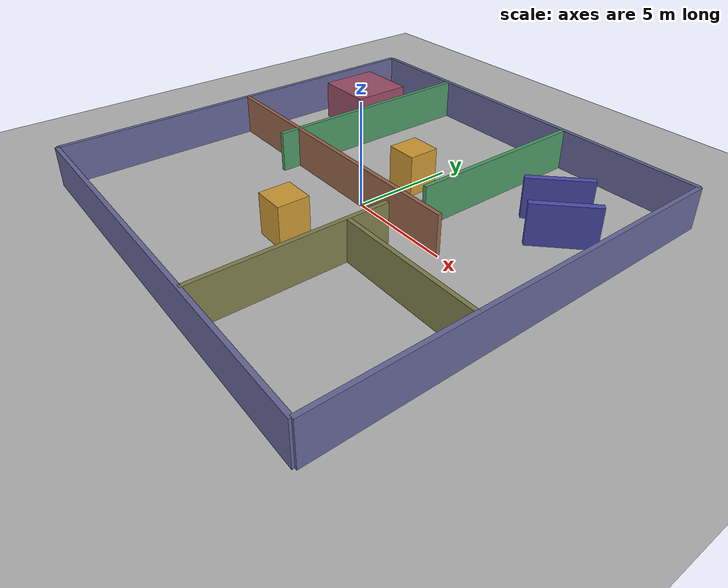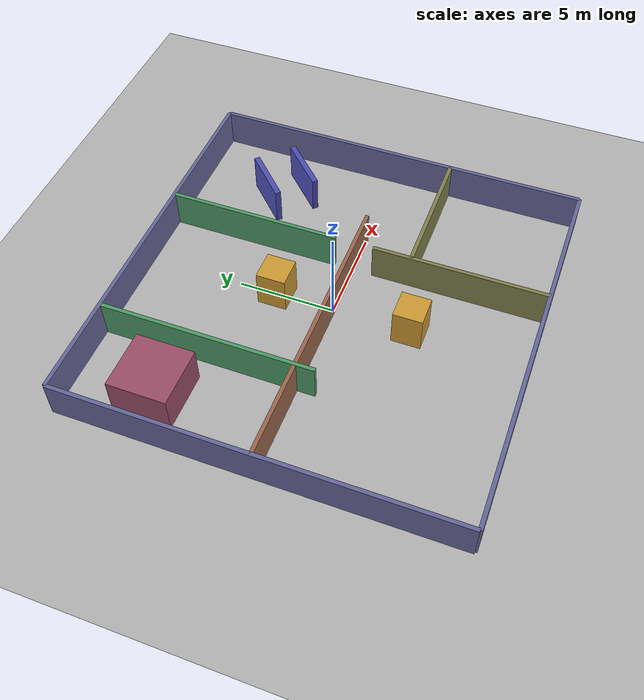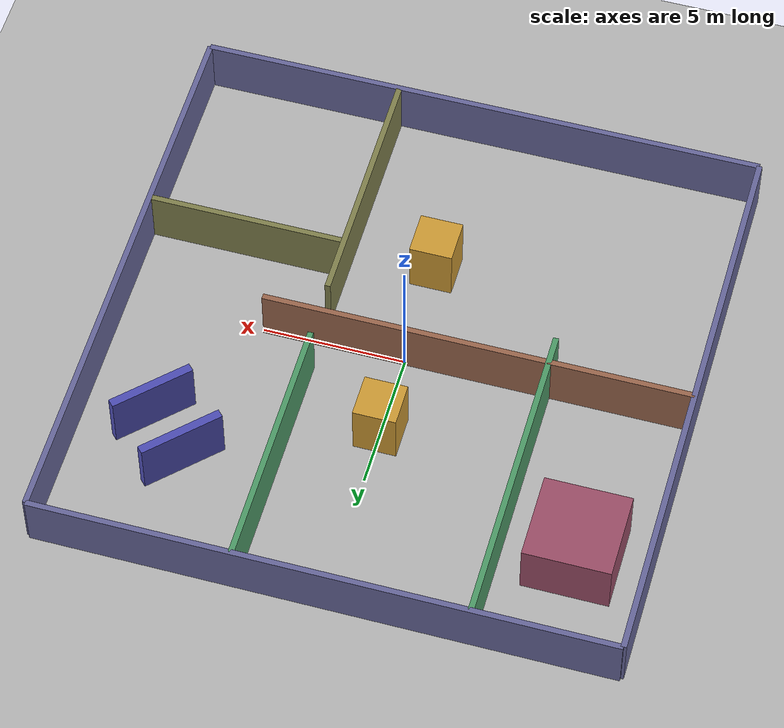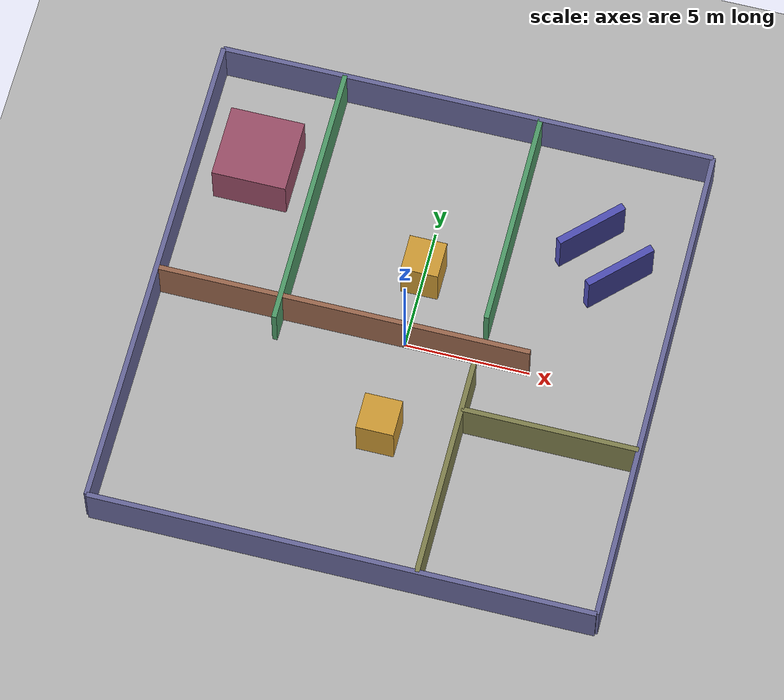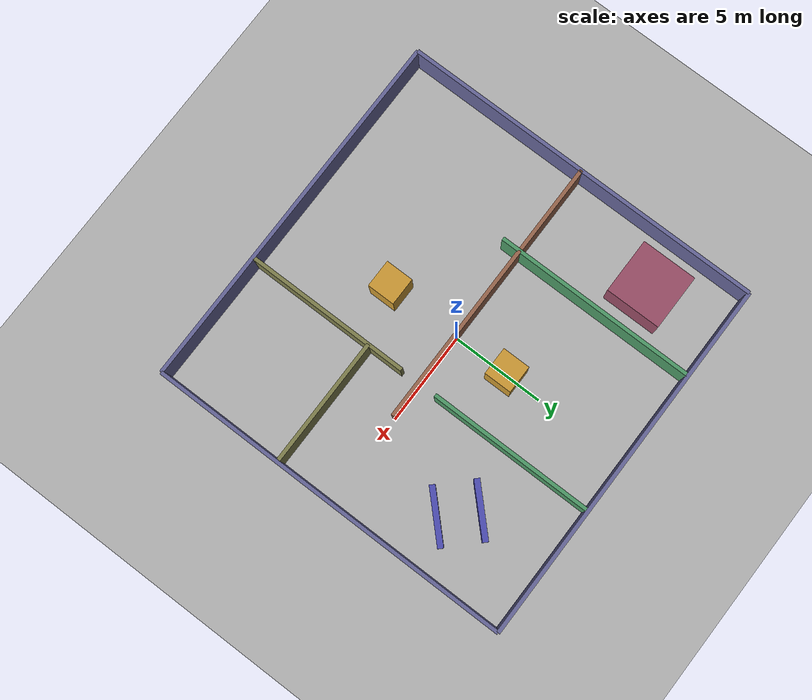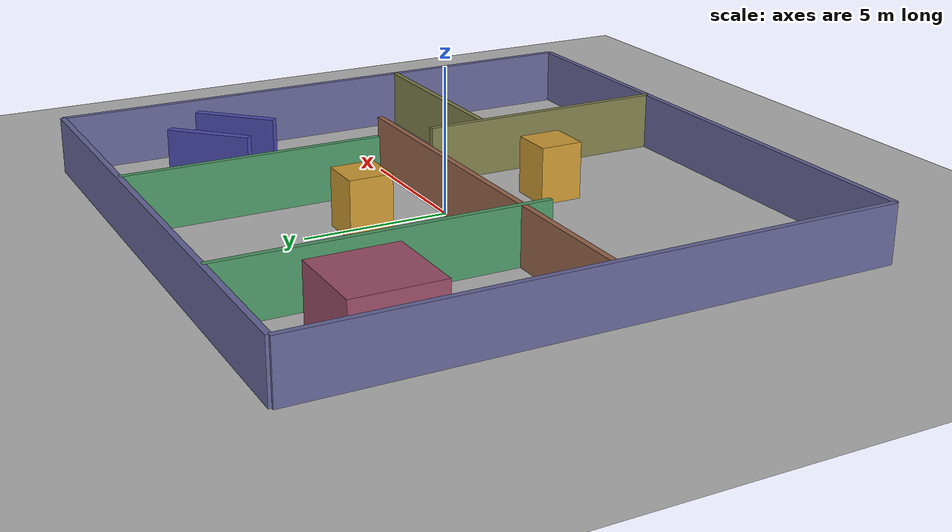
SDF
<?xml version="1.0" ?>
<sdf version='1.8'>
  <world name='maze'>

    <physics name='1ms' type='ignored'>
      <max_step_size>0.001</max_step_size>
      <real_time_factor>1</real_time_factor>
    </physics>

    <plugin filename="ignition-gazebo-physics-system"
            name="ignition::gazebo::systems::Physics">
      <max_step_size>0.001</max_step_size>
      <real_time_factor>1.0</real_time_factor>
      <real_time_update_rate>1000</real_time_update_rate>
    </plugin>
    <plugin filename="ignition-gazebo-user-commands-system"
            name="ignition::gazebo::systems::UserCommands"/>
    <plugin filename="ignition-gazebo-scene-broadcaster-system"
            name="ignition::gazebo::systems::SceneBroadcaster"/>
    <plugin filename="ignition-gazebo-sensors-system"
            name="ignition::gazebo::systems::Sensors">
      <render_engine>ogre2</render_engine>
    </plugin>
    <plugin filename="ignition-gazebo-contact-system"
            name="ignition::gazebo::systems::Contact"/>

    <light name='sun' type='directional'>
      <pose>0 0 10 0 0 0</pose>
      <cast_shadows>true</cast_shadows>
      <intensity>1</intensity>
      <direction>-0.5 0.1 -0.9</direction>
      <diffuse>0.8 0.8 0.8 1</diffuse>
      <specular>0.2 0.2 0.2 1</specular>
    </light>

    <!-- Ground plane -->
    <model name='ground_plane'>
      <static>true</static>
      <link name='link'>
        <collision name='collision'>
          <geometry><plane><normal>0 0 1</normal><size>100 100</size></plane></geometry>
        </collision>
        <visual name='visual'>
          <geometry><plane><normal>0 0 1</normal><size>100 100</size></plane></geometry>
          <material>
            <ambient>0.7 0.7 0.7 1</ambient>
            <diffuse>0.7 0.7 0.7 1</diffuse>
          </material>
        </visual>
      </link>
    </model>

    <!-- ===== OUTER BOUNDARY WALLS (20x20m arena) ===== -->
    <!-- North wall -->
    <model name='wall_north'><static>true</static><link name='link'>
      <pose>0 10 1 0 0 0</pose>
      <collision name='c'><geometry><box><size>20 0.2 2</size></box></geometry></collision>
      <visual name='v'><geometry><box><size>20 0.2 2</size></box></geometry>
        <material><ambient>0.4 0.4 0.6 1</ambient><diffuse>0.4 0.4 0.6 1</diffuse></material></visual>
    </link></model>

    <!-- South wall -->
    <model name='wall_south'><static>true</static><link name='link'>
      <pose>0 -10 1 0 0 0</pose>
      <collision name='c'><geometry><box><size>20 0.2 2</size></box></geometry></collision>
      <visual name='v'><geometry><box><size>20 0.2 2</size></box></geometry>
        <material><ambient>0.4 0.4 0.6 1</ambient><diffuse>0.4 0.4 0.6 1</diffuse></material></visual>
    </link></model>

    <!-- East wall -->
    <model name='wall_east'><static>true</static><link name='link'>
      <pose>10 0 1 0 0 0</pose>
      <collision name='c'><geometry><box><size>0.2 20 2</size></box></geometry></collision>
      <visual name='v'><geometry><box><size>0.2 20 2</size></box></geometry>
        <material><ambient>0.4 0.4 0.6 1</ambient><diffuse>0.4 0.4 0.6 1</diffuse></material></visual>
    </link></model>

    <!-- West wall -->
    <model name='wall_west'><static>true</static><link name='link'>
      <pose>-10 0 1 0 0 0</pose>
      <collision name='c'><geometry><box><size>0.2 20 2</size></box></geometry></collision>
      <visual name='v'><geometry><box><size>0.2 20 2</size></box></geometry>
        <material><ambient>0.4 0.4 0.6 1</ambient><diffuse>0.4 0.4 0.6 1</diffuse></material></visual>
    </link></model>

    <!-- ===== INTERIOR WALLS — ROOM DIVIDERS ===== -->

    <!-- Horizontal divider: splits arena into top/bottom halves, gap on right -->
    <model name='h_div_left'><static>true</static><link name='link'>
      <pose>-2.5 0 1 0 0 0</pose>
      <collision name='c'><geometry><box><size>15 0.2 2</size></box></geometry></collision>
      <visual name='v'><geometry><box><size>15 0.2 2</size></box></geometry>
        <material><ambient>0.6 0.4 0.3 1</ambient><diffuse>0.6 0.4 0.3 1</diffuse></material></visual>
    </link></model>

    <!-- Vertical divider: left side corridor, gap at bottom -->
    <model name='v_div_left'><static>true</static><link name='link'>
      <pose>-5 4.5 1 0 0 0</pose>
      <collision name='c'><geometry><box><size>0.2 11 2</size></box></geometry></collision>
      <visual name='v'><geometry><box><size>0.2 11 2</size></box></geometry>
        <material><ambient>0.3 0.6 0.4 1</ambient><diffuse>0.3 0.6 0.4 1</diffuse></material></visual>
    </link></model>

    <!-- Vertical divider: right side, top half only -->
    <model name='v_div_right_top'><static>true</static><link name='link'>
      <pose>3 5.5 1 0 0 0</pose>
      <collision name='c'><geometry><box><size>0.2 9 2</size></box></geometry></collision>
      <visual name='v'><geometry><box><size>0.2 9 2</size></box></geometry>
        <material><ambient>0.3 0.6 0.4 1</ambient><diffuse>0.3 0.6 0.4 1</diffuse></material></visual>
    </link></model>

    <!-- Bottom-right room: vertical wall -->
    <model name='br_wall_v'><static>true</static><link name='link'>
      <pose>3 -5.5 1 0 0 0</pose>
      <collision name='c'><geometry><box><size>0.2 9 2</size></box></geometry></collision>
      <visual name='v'><geometry><box><size>0.2 9 2</size></box></geometry>
        <material><ambient>0.5 0.5 0.3 1</ambient><diffuse>0.5 0.5 0.3 1</diffuse></material></visual>
    </link></model>

    <!-- Bottom-right room: horizontal wall, gap on left -->
    <model name='br_wall_h'><static>true</static><link name='link'>
      <pose>6.5 -3 1 0 0 0</pose>
      <collision name='c'><geometry><box><size>7 0.2 2</size></box></geometry></collision>
      <visual name='v'><geometry><box><size>7 0.2 2</size></box></geometry>
        <material><ambient>0.5 0.5 0.3 1</ambient><diffuse>0.5 0.5 0.3 1</diffuse></material></visual>
    </link></model>

    <!-- Narrow corridor: top-left box -->
    <model name='tl_box'><static>true</static><link name='link'>
      <pose>-7.5 6 1 0 0 0</pose>
      <collision name='c'><geometry><box><size>3 3 2</size></box></geometry></collision>
      <visual name='v'><geometry><box><size>3 3 2</size></box></geometry>
        <material><ambient>0.6 0.3 0.4 1</ambient><diffuse>0.6 0.3 0.4 1</diffuse></material></visual>
    </link></model>

    <!-- Central pillar cluster -->
    <model name='pillar_a'><static>true</static><link name='link'>
      <pose>0 3 1 0 0 0</pose>
      <collision name='c'><geometry><box><size>1.5 1.5 2</size></box></geometry></collision>
      <visual name='v'><geometry><box><size>1.5 1.5 2</size></box></geometry>
        <material><ambient>0.8 0.6 0.2 1</ambient><diffuse>0.8 0.6 0.2 1</diffuse></material></visual>
    </link></model>

    <model name='pillar_b'><static>true</static><link name='link'>
      <pose>0 -4 1 0 0 0</pose>
      <collision name='c'><geometry><box><size>1.5 1.5 2</size></box></geometry></collision>
      <visual name='v'><geometry><box><size>1.5 1.5 2</size></box></geometry>
        <material><ambient>0.8 0.6 0.2 1</ambient><diffuse>0.8 0.6 0.2 1</diffuse></material></visual>
    </link></model>

    <!-- Diagonal obstacle block (top-right area) -->
    <model name='diag_block_1'><static>true</static><link name='link'>
      <pose>6 6 1 0 0 0.785</pose>
      <collision name='c'><geometry><box><size>3 0.3 2</size></box></geometry></collision>
      <visual name='v'><geometry><box><size>3 0.3 2</size></box></geometry>
        <material><ambient>0.3 0.3 0.7 1</ambient><diffuse>0.3 0.3 0.7 1</diffuse></material></visual>
    </link></model>

    <model name='diag_block_2'><static>true</static><link name='link'>
      <pose>7.5 4.5 1 0 0 0.785</pose>
      <collision name='c'><geometry><box><size>3 0.3 2</size></box></geometry></collision>
      <visual name='v'><geometry><box><size>3 0.3 2</size></box></geometry>
        <material><ambient>0.3 0.3 0.7 1</ambient><diffuse>0.3 0.3 0.7 1</diffuse></material></visual>
    </link></model>

  </world>
</sdf>
